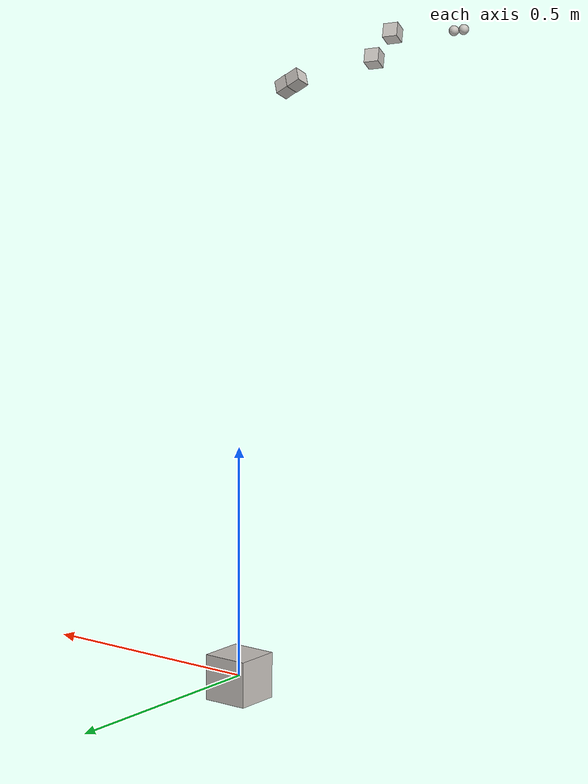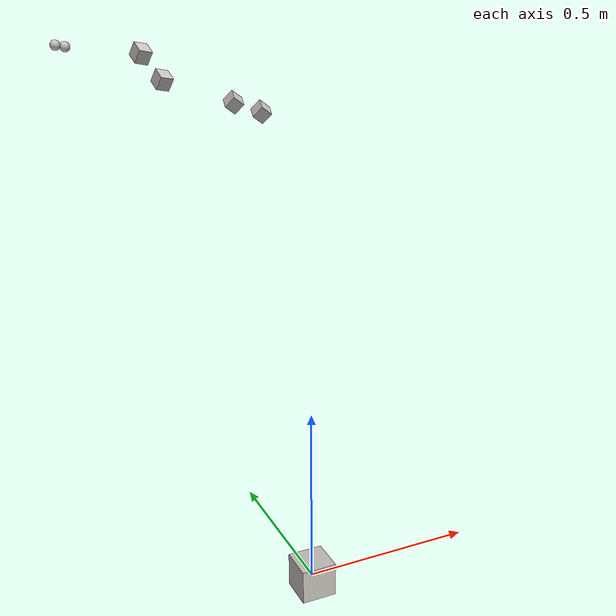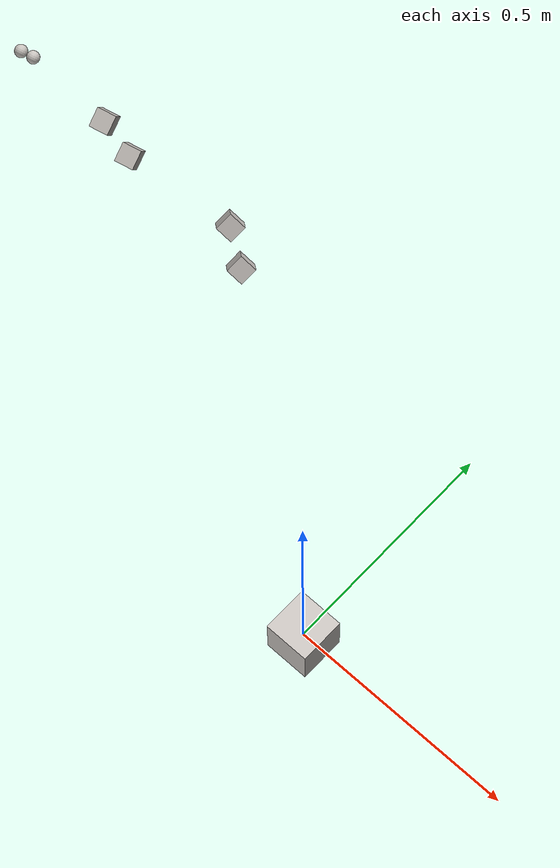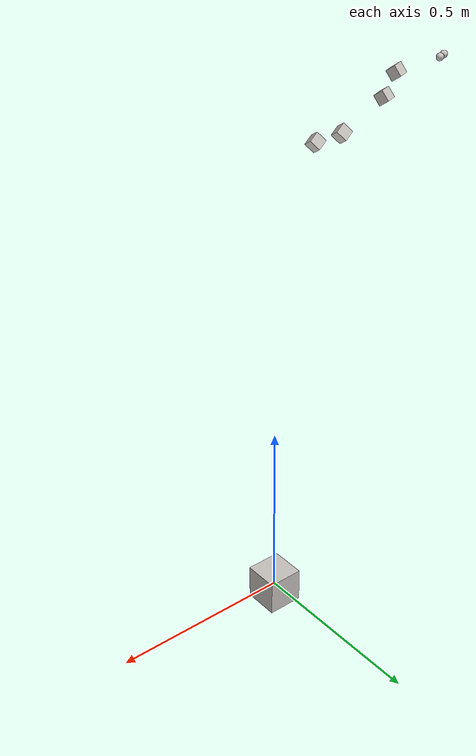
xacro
<?xml version="1.0" encoding="utf-8" ?>
<robot name="robot_kol">

    <link name="base_link">
        <inertial>
            <origin xyz="0 0 0" rpy="0 0 0" />
            <mass value="1.46872860183279" />
            <inertia ixx="0.337078234151496" ixy="0.000400956172161471" ixz="0.000153729345332478" iyy="0.323323767647255" iyz="-0.00436480886180004" izz="0.0204387896128557" />
        </inertial>
	<visual>
            <origin xyz="0 0 0" rpy="0 0 0" />
            <geometry>
                <box size="0.1 0.1 0.1"/>
            </geometry>
            <material name="">
                <color rgba="0.780392156862745 0.76078431372549 0.741176470588235 1" />
            </material>
        </visual>
	<collision>
            <origin xyz="0 0 0" rpy="0 0 0" />
            <geometry>
                <box size="0.1 0.1 0.1"/>
            </geometry>
        </collision>
    </link>

    <link name="LKL1">
	<inertial>
            <origin xyz="0 0 0" rpy="0 0 0" />
            <mass value="0.107409280317998" />
            <inertia ixx="0" ixy="0" ixz="0" iyy="0" iyz="0" izz="0" />
        </inertial>
	<visual>
            <origin xyz="0 0 0" rpy="0 0 0" />
            <geometry>
                <box size="0.03 0.03 0.03"/>
            </geometry>
            <material name="">
                <color rgba="0.780392156862745 0.76078431372549 0.741176470588235 1" />
            </material>
        </visual>
	<collision>
            <origin xyz="0 0 0" rpy="0 0 0" />
            <geometry>
                <box size="0.03 0.03 0.03"/>
            </geometry>
        </collision>
    </link>

    <joint name="JKL1" type="revolute">
        <origin xyz="-0.119911595296941 0 1.2673449974201" rpy="0 0 1.5707963267949" />
        <parent link="base_link" />
        <child link="LKL1" />
        <axis xyz="0 -0.950178193313767 -0.311707235961865" />
        <limit lower="-4.18719" upper="-1.045605" effort="17000" velocity="45" />
    </joint>

    <link name="LKL2">
	<inertial>
            <origin xyz="0 0 0" rpy="0 0 0" />
            <mass value="0.103899926184644" />
            <inertia ixx="0" ixy="0" ixz="0" iyy="0" iyz="0" izz="0" />
        </inertial>
	<visual>
            <origin xyz="0 0 0" rpy="0 0 0" />
            <geometry>
                <box size="0.03 0.03 0.03"/>
            </geometry>
            <material name="">
                <color rgba="0.780392156862745 0.76078431372549 0.741176470588235 1" />
            </material>
        </visual>
	<collision>
            <origin xyz="0 0 0" rpy="0 0 0" />
            <geometry>
                <box size="0.03 0.03 0.03"/>
            </geometry>
        </collision>
    </link>

    <joint name="JKL2" type="revolute">
        <origin xyz="-0.0300007513110643 0.0481697030691494 0.0312158251163472" rpy="0 0 0" />
        <parent link="LKL1" />
        <child link="LKL2" />
        <axis xyz="-1 0 0" />
        <limit lower="-1.57079" upper="0.0" effort="17000" velocity="45" />
    </joint>

    <link name="LKL3">
	<inertial>
            <origin xyz="0 0 0" rpy="0 0 0" />
            <mass value="0.107409280317999" />
            <inertia ixx="0" ixy="0" ixz="0" iyy="0" iyz="0" izz="0" />
        </inertial>
	<visual>
            <origin xyz="0 0 0" rpy="0 0 0" />
            <geometry>
                <box size="0.03 0.03 0.03"/>
            </geometry>
            <material name="">
                <color rgba="0.780392156862745 0.76078431372549 0.741176470588235 1" />
            </material>
        </visual>
	<collision>
            <origin xyz="0 0 0" rpy="0 0 0" />
            <geometry>
                <box size="0.03 0.03 0.03"/>
            </geometry>
        </collision>
    </link>

    <joint name="JKL3" type="revolute">
        <origin xyz="0.031249999999998 0.169784227080098 0.040963865943201" rpy="0 0 0" />
        <parent link="LKL2" />
        <child link="LKL3" />
        <axis xyz="0 0.950178193313769 0.311707235961858" />
        <limit lower="-2.61798" upper="-0.523599" effort="17000" velocity="45" />
    </joint>

    <link name="LKL4">
	<inertial>
            <origin xyz="0 0 0" rpy="0 0 0" />
            <mass value="0.1039" />
            <inertia ixx="0" ixy="0" ixz="0" iyy="0" iyz="0" izz="0" />
        </inertial>
	<visual>
            <origin xyz="0 0 0" rpy="0 0 0" />
            <geometry>
                <box size="0.03 0.03 0.03"/>
            </geometry>
            <material name="">
                <color rgba="0.780392156862745 0.76078431372549 0.741176470588235 1" />
            </material>
        </visual>
	<collision>
            <origin xyz="0 0 0" rpy="0 0 0" />
            <geometry>
                <box size="0.03 0.03 0.03"/>
            </geometry>
        </collision>
    </link>

    <joint name="JKL4" type="revolute">
        <origin xyz="-0.0334999999999988 0.0481697030691741 0.0312158251163501" rpy="0 0 0" />
        <parent link="LKL3" />
        <child link="LKL4" />
        <axis xyz="1 0 0" />
        <limit lower="0.0" upper="1.57079" effort="17000" velocity="45" />
    </joint>

    <link name="LKL5">
     	<inertial>
            <origin xyz="0 0 0" rpy="0 0 0" />
            <mass value="0.012475" />
            <inertia ixx="0" ixy="0" ixz="0" iyy="0" iyz="0" izz="0" />
        </inertial>
	<visual>
            <origin xyz="0 0 0" rpy="0 0 0" />
            <geometry>
                <sphere radius="0.01"/>
            </geometry>
            <material name="">
                <color rgba="0.780392156862745 0.76078431372549 0.741176470588235 1" />
            </material>
        </visual>
	<collision>
            <origin xyz="0 0 0" rpy="0 0 0" />
            <geometry>
                <sphere radius="0.01"/>
            </geometry>
        </collision>
    </link>

    <joint name="JKL5" type="revolute">
        <origin xyz="0.03075 0.14175 0.031769" rpy="0 0 0" />
        <parent link="LKL4" />
        <child link="LKL5" />
        <axis xyz="0 0.95018 0.31171"/>
        <limit lower="-1.0472" upper="1.0472" effort="17000" velocity="45" />
    </joint>

    <!-- dummy link > -->
    <link name="LKL5_dummy" >
    	<inertial>
            <origin xyz="0 0 0" rpy="0 0 0" />
            <mass value="0.000012475" />
            <inertia ixx="0" ixy="0" ixz="0" iyy="0" iyz="0" izz="0" />
        </inertial>
	<visual>
            <origin xyz="0 0 0" rpy="0 0 0" />
            <geometry>
                <sphere radius="0.01"/>
            </geometry>
            <material name="">
                <color rgba="0.780392156862745 0.76078431372549 0.741176470588235 1" />
            </material>
        </visual>
	<collision>
            <origin xyz="0 0 0" rpy="0 0 0" />
            <geometry>
                <sphere radius="0.01"/>
            </geometry>
        </collision>
    </link>

    <joint name="JKL5_dummy_joint" type="revolute">
        <origin xyz="0 0.02 0" rpy="0 0 0" />
        <parent link="LKL5" />
        <child link="LKL5_dummy" />
        <axis xyz="1 0 0" />
        <limit lower="-3.14" upper="3.14" effort="17000" velocity="45" />
    </joint>

</robot>
